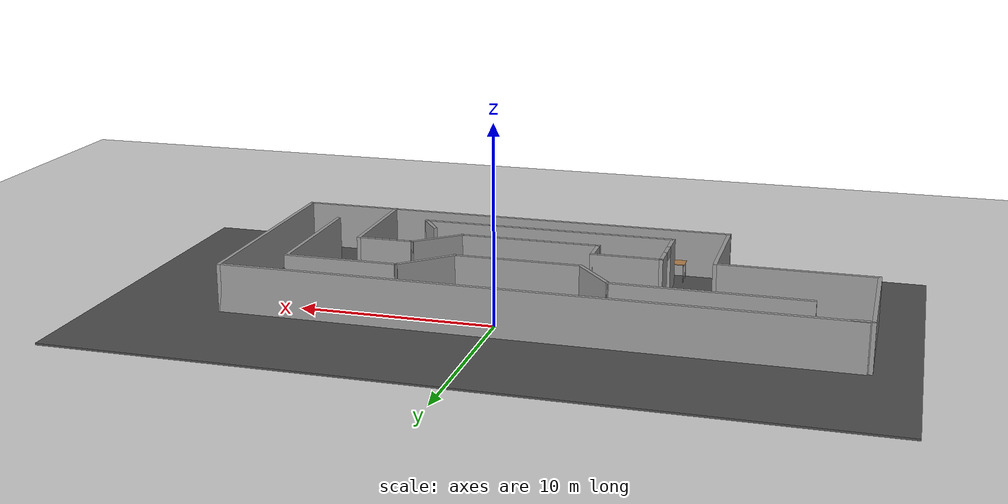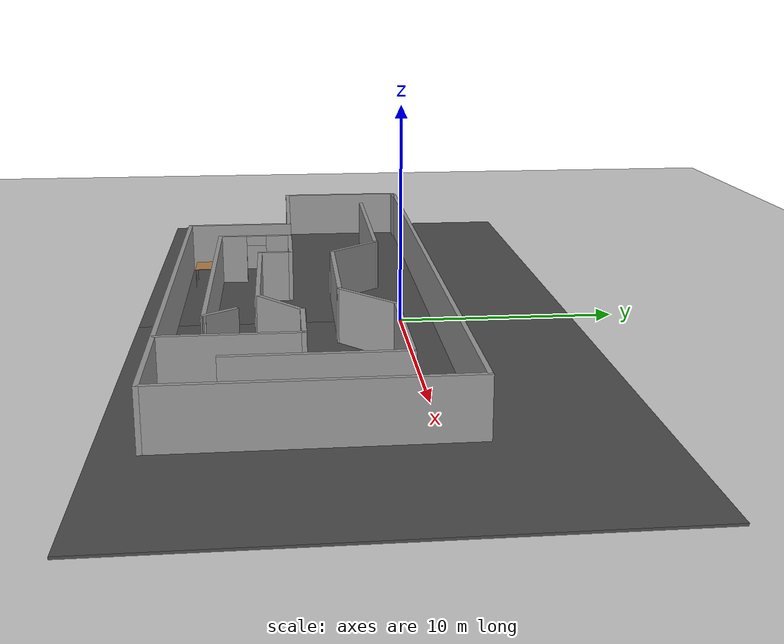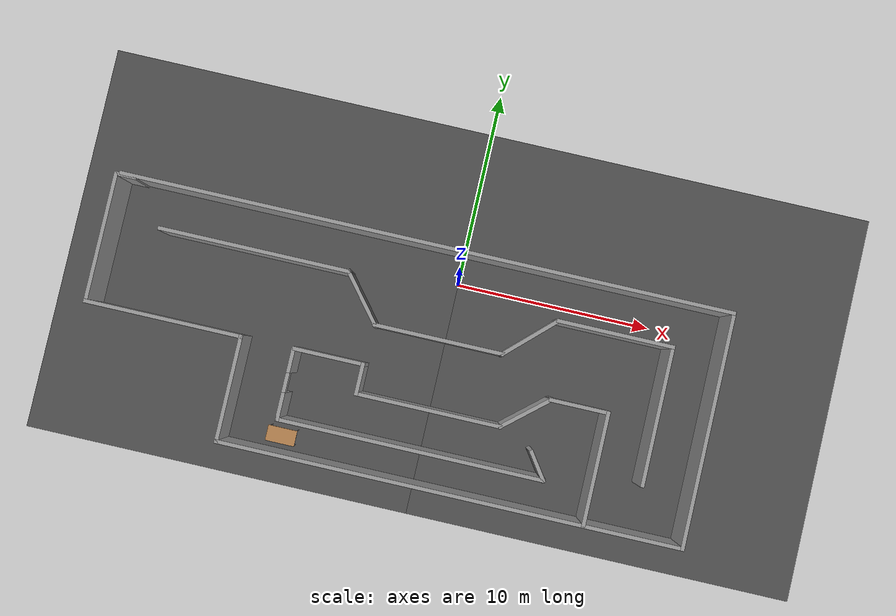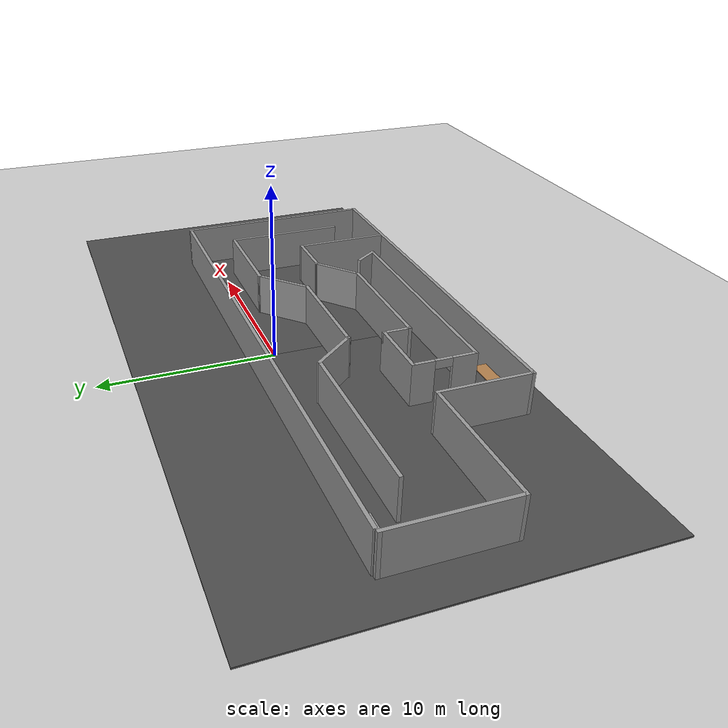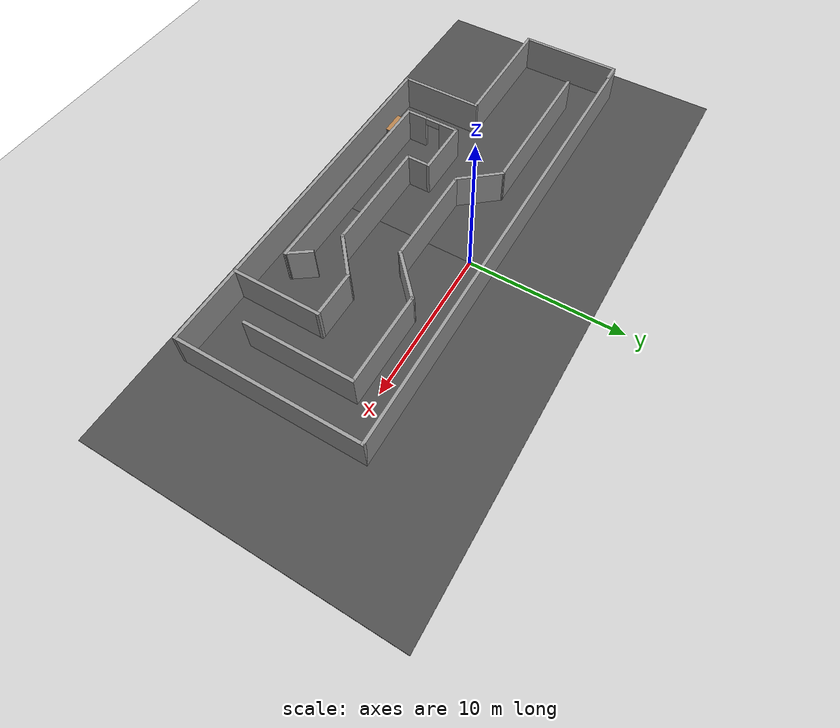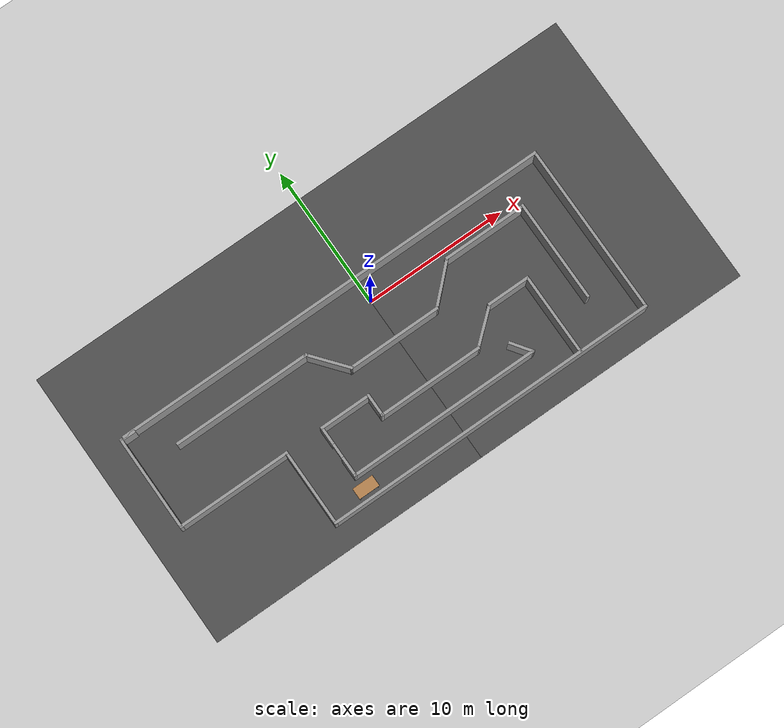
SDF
<sdf version="1.4">
 <world name="default">
  <light name="sun" type="directional">
   <pose>0 0 10 0 -0 0</pose>
   <diffuse>0.8 0.8 0.8 1</diffuse>
   <specular>0.2 0.2 0.2 1</specular>
   <attenuation>
    <range>1000</range>
    <constant>0.9</constant>
    <linear>0.01</linear>
    <quadratic>0.001</quadratic>
   </attenuation>
   <direction>-0.5 0.1 -0.9</direction>
  </light>
  <model name="ground_plane">
   <static>1</static>
   <link name="link">
    <collision name="collision">
     <geometry><plane><normal>0 0 1</normal><size>100 100</size></plane></geometry>
     <surface><friction><ode><mu>100</mu><mu2>50</mu2></ode></friction></surface>
    </collision>
    <visual name="visual">
     <cast_shadows>0</cast_shadows>
     <geometry><plane><normal>0 0 1</normal><size>100 100</size></plane></geometry>
     <material>
      <script><uri>file://media/materials/scripts/gazebo.material</uri><name>Gazebo/Grey</name></script>
     </material>
    </visual>
    <velocity_decay><linear>0</linear><angular>0</angular></velocity_decay>
   </link>
  </model>
  <physics type="ode">
   <max_step_size>0.001</max_step_size>
   <real_time_factor>1</real_time_factor>
   <real_time_update_rate>1000</real_time_update_rate>
   <gravity>0 0 -9.8</gravity>
  </physics>
  <scene><ambient>0.4 0.4 0.4 1</ambient><background>0.7 0.7 0.7 1</background><shadows>1</shadows></scene>
  <model name="corridor_small">
   <link name="Wall_10">
    <collision name="Wall_10_Collision">
     <geometry><box><size>1.12387 0.2 2.5</size></box></geometry>
     <pose>0 0 1.25 0 -0 0</pose>
    </collision>
    <visual name="Wall_10_Visual">
     <pose>0 0 1.25 0 -0 0</pose>
     <geometry><box><size>1.12387 0.2 2.5</size></box></geometry>
     <material>
      <script><uri>file://media/materials/scripts/gazebo.material</uri><name>Gazebo/Grey</name></script>
     </material>
    </visual>
    <velocity_decay><linear>0</linear><angular>0</angular></velocity_decay>
    <pose>-23.7065 13.1084 0 0 -0 0</pose>
   </link>
   <link name="Wall_12">
    <collision name="Wall_12_Collision">
     <geometry><box><size>9.79835 0.2 2.5</size></box></geometry>
     <pose>0 0 1.25 0 -0 0</pose>
    </collision>
    <visual name="Wall_12_Visual">
     <pose>0 0 1.25 0 -0 0</pose>
     <geometry><box><size>9.79835 0.2 2.5</size></box></geometry>
     <material>
      <script><uri>file://media/materials/scripts/gazebo.material</uri><name>Gazebo/Grey</name></script>
     </material>
    </visual>
    <velocity_decay><linear>0</linear><angular>0</angular></velocity_decay>
    <pose>-16.6254 10.9446 0 0 -0 0</pose>
   </link>
   <link name="Wall_13">
    <collision name="Wall_13_Collision">
     <geometry><box><size>3.13082 0.2 2.5</size></box></geometry>
     <pose>0 0 1.25 0 -0 0</pose>
    </collision>
    <visual name="Wall_13_Visual">
     <pose>0 0 1.25 0 -0 0</pose>
     <geometry><box><size>3.13082 0.2 2.5</size></box></geometry>
     <material>
      <script><uri>file://media/materials/scripts/gazebo.material</uri><name>Gazebo/Grey</name></script>
     </material>
    </visual>
    <velocity_decay><linear>0</linear><angular>0</angular></velocity_decay>
    <pose>-10.9033 9.80634 0 0 0 -0.889498</pose>
   </link>
   <link name="Wall_14">
    <collision name="Wall_14_Collision">
     <geometry><box><size>6.66043 0.2 2.5</size></box></geometry>
     <pose>0 0 1.25 0 -0 0</pose>
    </collision>
    <visual name="Wall_14_Visual">
     <pose>0 0 1.25 0 -0 0</pose>
     <geometry><box><size>6.66043 0.2 2.5</size></box></geometry>
     <material>
      <script><uri>file://media/materials/scripts/gazebo.material</uri><name>Gazebo/Grey</name></script>
     </material>
    </visual>
    <velocity_decay><linear>0</linear><angular>0</angular></velocity_decay>
    <pose>-6.75013 8.66808 0 0 -0 0</pose>
   </link>
   <link name="Wall_15">
    <collision name="Wall_15_Collision">
     <geometry><box><size>3.42068 0.2 2.5</size></box></geometry>
     <pose>0 0 1.25 0 -0 0</pose>
    </collision>
    <visual name="Wall_15_Visual">
     <pose>0 0 1.25 0 -0 0</pose>
     <geometry><box><size>3.42068 0.2 2.5</size></box></geometry>
     <material>
      <script><uri>file://media/materials/scripts/gazebo.material</uri><name>Gazebo/Grey</name></script>
     </material>
    </visual>
    <velocity_decay><linear>0</linear><angular>0</angular></velocity_decay>
    <pose>-2.35089 9.77558 0 0 -0 0.758378</pose>
   </link>
   <link name="Wall_16">
    <collision name="Wall_16_Collision">
     <geometry><box><size>5.98362 0.2 2.5</size></box></geometry>
     <pose>0 0 1.25 0 -0 0</pose>
    </collision>
    <visual name="Wall_16_Visual">
     <pose>0 0 1.25 0 -0 0</pose>
     <geometry><box><size>5.98362 0.2 2.5</size></box></geometry>
     <material>
      <script><uri>file://media/materials/scripts/gazebo.material</uri><name>Gazebo/Grey</name></script>
     </material>
    </visual>
    <velocity_decay><linear>0</linear><angular>0</angular></velocity_decay>
    <pose>1.70995 10.8831 0 0 -0 0</pose>
   </link>
   <link name="Wall_17">
    <collision name="Wall_17_Collision">
     <geometry><box><size>7.15265 0.2 2.5</size></box></geometry>
     <pose>0 0 1.25 0 -0 0</pose>
    </collision>
    <visual name="Wall_17_Visual">
     <pose>0 0 1.25 0 -0 0</pose>
     <geometry><box><size>7.15265 0.2 2.5</size></box></geometry>
     <material>
      <script><uri>file://media/materials/scripts/gazebo.material</uri><name>Gazebo/Grey</name></script>
     </material>
    </visual>
    <velocity_decay><linear>0</linear><angular>0</angular></velocity_decay>
    <pose>4.60176 7.40675 0 0 0 -1.5708</pose>
   </link>
   <link name="Wall_19">
    <collision name="Wall_19_Collision">
     <geometry><box><size>5.79904 0.2 2.5</size></box></geometry>
     <pose>0 0 1.25 0 -0 0</pose>
    </collision>
    <visual name="Wall_19_Visual">
     <pose>0 0 1.25 0 -0 0</pose>
     <geometry><box><size>5.79904 0.2 2.5</size></box></geometry>
     <material>
      <script><uri>file://media/materials/scripts/gazebo.material</uri><name>Gazebo/Grey</name></script>
     </material>
    </visual>
    <velocity_decay><linear>0</linear><angular>0</angular></velocity_decay>
    <pose>2.20217 4.2073 0 0 -0 1.5708</pose>
   </link>
   <link name="Wall_20">
    <collision name="Wall_20_Collision">
     <geometry><box><size>3.09181 0.2 2.5</size></box></geometry>
     <pose>0 0 1.25 0 -0 0</pose>
    </collision>
    <visual name="Wall_20_Visual">
     <pose>0 0 1.25 0 -0 0</pose>
     <geometry><box><size>3.09181 0.2 2.5</size></box></geometry>
     <material>
      <script><uri>file://media/materials/scripts/gazebo.material</uri><name>Gazebo/Grey</name></script>
     </material>
    </visual>
    <velocity_decay><linear>0</linear><angular>0</angular></velocity_decay>
    <pose>0.756269 7.00682 0 0 -0 3.14159</pose>
   </link>
   <link name="Wall_21">
    <collision name="Wall_21_Collision">
     <geometry><box><size>3.03629 0.2 2.5</size></box></geometry>
     <pose>0 0 1.25 0 -0 0</pose>
    </collision>
    <visual name="Wall_21_Visual">
     <pose>0 0 1.25 0 -0 0</pose>
     <geometry><box><size>3.03629 0.2 2.5</size></box></geometry>
     <material>
      <script><uri>file://media/materials/scripts/gazebo.material</uri><name>Gazebo/Grey</name></script>
     </material>
    </visual>
    <velocity_decay><linear>0</linear><angular>0</angular></velocity_decay>
    <pose>-1.76637 6.0839 0 0 0 -2.43297</pose>
   </link>
   <link name="Wall_22">
    <collision name="Wall_22_Collision">
     <geometry><box><size>7.46029 0.2 2.5</size></box></geometry>
     <pose>0 0 1.25 0 -0 0</pose>
    </collision>
    <visual name="Wall_22_Visual">
     <pose>0 0 1.25 0 -0 0</pose>
     <geometry><box><size>7.46029 0.2 2.5</size></box></geometry>
     <material>
      <script><uri>file://media/materials/scripts/gazebo.material</uri><name>Gazebo/Grey</name></script>
     </material>
    </visual>
    <velocity_decay><linear>0</linear><angular>0</angular></velocity_decay>
    <pose>-6.47326 5.16099 0 0 -0 3.14159</pose>
   </link>
   <link name="Wall_23">
    <collision name="Wall_23_Collision">
     <geometry><box><size>1.67667 0.2 2.5</size></box></geometry>
     <pose>0 0 1.25 0 -0 0</pose>
    </collision>
    <visual name="Wall_23_Visual">
     <pose>0 0 1.25 0 -0 0</pose>
     <geometry><box><size>1.67667 0.2 2.5</size></box></geometry>
     <material>
      <script><uri>file://media/materials/scripts/gazebo.material</uri><name>Gazebo/Grey</name></script>
     </material>
    </visual>
    <velocity_decay><linear>0</linear><angular>0</angular></velocity_decay>
    <pose>-10.1034 5.89932 0 0 -0 1.5708</pose>
   </link>
   <link name="Wall_24">
    <collision name="Wall_24_Collision">
     <geometry><box><size>3.70709 0.2 2.5</size></box></geometry>
     <pose>0 0 1.25 0 -0 0</pose>
    </collision>
    <visual name="Wall_24_Visual">
     <pose>0 0 1.25 0 -0 0</pose>
     <geometry><box><size>3.70709 0.2 2.5</size></box></geometry>
     <material>
      <script><uri>file://media/materials/scripts/gazebo.material</uri><name>Gazebo/Grey</name></script>
     </material>
    </visual>
    <velocity_decay><linear>0</linear><angular>0</angular></velocity_decay>
    <pose>-11.8569 6.63766 0 0 -0 3.14159</pose>
   </link>
   <link name="Wall_25">
    <pose>-13.6105 4.85335 0 0 0 -1.5708</pose>
    <visual name="Wall_25_Visual_0">
     <pose>-1.22292 0 1.25 0 -0 0</pose>
     <geometry><box><size>1.32278 0.2 2.5</size></box></geometry>
     <material>
      <script><uri>file://media/materials/scripts/gazebo.material</uri><name>Gazebo/Grey</name></script>
     </material>
    </visual>
    <collision name="Wall_25_Collision_0">
     <geometry><box><size>1.32278 0.2 2.5</size></box></geometry>
     <pose>-1.22292 0 1.25 0 -0 0</pose>
    </collision>
    <visual name="Wall_25_Visual_1">
     <pose>1.16139 0 1.25 0 -0 0</pose>
     <geometry><box><size>1.44584 0.2 2.5</size></box></geometry>
     <material>
      <script><uri>file://media/materials/scripts/gazebo.material</uri><name>Gazebo/Grey</name></script>
     </material>
    </visual>
    <collision name="Wall_25_Collision_1">
     <geometry><box><size>1.44584 0.2 2.5</size></box></geometry>
     <pose>1.16139 0 1.25 0 -0 0</pose>
    </collision>
    <visual name="Wall_25_Visual_2">
     <pose>-0.061528 0 2.25 0 -0 0</pose>
     <geometry><box><size>1 0.2 0.5</size></box></geometry>
     <material>
      <script><uri>file://media/materials/scripts/gazebo.material</uri><name>Gazebo/Grey</name></script>
     </material>
    </visual>
    <collision name="Wall_25_Collision_2">
     <geometry><box><size>1 0.2 0.5</size></box></geometry>
     <pose>-0.061528 0 2.25 0 -0 0</pose>
    </collision>
    <velocity_decay><linear>0</linear><angular>0</angular></velocity_decay>
   </link>
   <link name="Wall_26">
    <collision name="Wall_26_Collision">
     <geometry><box><size>13.6131 0.2 2.5</size></box></geometry>
     <pose>0 0 1.25 0 -0 0</pose>
    </collision>
    <visual name="Wall_26_Visual">
     <pose>0 0 1.25 0 -0 0</pose>
     <geometry><box><size>13.6131 0.2 2.5</size></box></geometry>
     <material>
      <script><uri>file://media/materials/scripts/gazebo.material</uri><name>Gazebo/Grey</name></script>
     </material>
    </visual>
    <velocity_decay><linear>0</linear><angular>0</angular></velocity_decay>
    <pose>-6.90395 3.06904 0 0 -0 0</pose>
   </link>
   <link name="Wall_27">
    <collision name="Wall_27_Collision">
     <geometry><box><size>1.70209 0.2 2.5</size></box></geometry>
     <pose>0 0 1.25 0 -0 0</pose>
    </collision>
    <visual name="Wall_27_Visual">
     <pose>0 0 1.25 0 -0 0</pose>
     <geometry><box><size>1.70209 0.2 2.5</size></box></geometry>
     <material>
      <script><uri>file://media/materials/scripts/gazebo.material</uri><name>Gazebo/Grey</name></script>
     </material>
    </visual>
    <velocity_decay><linear>0</linear><angular>0</angular></velocity_decay>
    <pose>-0.628108 3.68432 0 0 -0 2.18152</pose>
   </link>
   <link name="Wall_4">
    <collision name="Wall_4_Collision">
     <geometry><box><size>31.3001 0.2 2.5</size></box></geometry>
     <pose>0 0 1.25 0 -0 0</pose>
    </collision>
    <visual name="Wall_4_Visual">
     <pose>0 0 1.25 0 -0 0</pose>
     <geometry><box><size>31.3001 0.2 2.5</size></box></geometry>
     <material>
      <script><uri>file://media/materials/scripts/gazebo.material</uri><name>Gazebo/Grey</name></script>
     </material>
    </visual>
    <velocity_decay><linear>0</linear><angular>0</angular></velocity_decay>
    <pose>-8.3686 13.1866 0 0 -0 0</pose>
   </link>
   <link name="Wall_5">
    <collision name="Wall_5_Collision">
     <geometry><box><size>12.0374 0.2 2.5</size></box></geometry>
     <pose>0 0 1.25 0 -0 0</pose>
    </collision>
    <visual name="Wall_5_Visual">
     <pose>0 0 1.25 0 -0 0</pose>
     <geometry><box><size>12.0374 0.2 2.5</size></box></geometry>
     <material>
      <script><uri>file://media/materials/scripts/gazebo.material</uri><name>Gazebo/Grey</name></script>
     </material>
    </visual>
    <velocity_decay><linear>0</linear><angular>0</angular></velocity_decay>
    <pose>7.18143 7.2679 0 0 0 -1.5708</pose>
   </link>
   <link name="Wall_6">
    <collision name="Wall_6_Collision">
     <geometry><box><size>23.6596 0.2 2.5</size></box></geometry>
     <pose>0 0 1.25 0 -0 0</pose>
    </collision>
    <visual name="Wall_6_Visual">
     <pose>0 0 1.25 0 -0 0</pose>
     <geometry><box><size>23.6596 0.2 2.5</size></box></geometry>
     <material>
      <script><uri>file://media/materials/scripts/gazebo.material</uri><name>Gazebo/Grey</name></script>
     </material>
    </visual>
    <velocity_decay><linear>0</linear><angular>0</angular></velocity_decay>
    <pose>-4.54835 1.3492 0 0 -0 3.14159</pose>
   </link>
   <link name="Wall_7">
    <collision name="Wall_7_Collision">
     <geometry><box><size>5.47302 0.2 2.5</size></box></geometry>
     <pose>0 0 1.25 0 -0 0</pose>
    </collision>
    <visual name="Wall_7_Visual">
     <pose>0 0 1.25 0 -0 0</pose>
     <geometry><box><size>5.47302 0.2 2.5</size></box></geometry>
     <material>
      <script><uri>file://media/materials/scripts/gazebo.material</uri><name>Gazebo/Grey</name></script>
     </material>
    </visual>
    <velocity_decay><linear>0</linear><angular>0</angular></velocity_decay>
    <pose>-16.2781 3.98571 0 0 -0 1.5708</pose>
   </link>
   <link name="Wall_8">
    <collision name="Wall_8_Collision">
     <geometry><box><size>8.09029 0.2 2.5</size></box></geometry>
     <pose>0 0 1.25 0 -0 0</pose>
    </collision>
    <visual name="Wall_8_Visual">
     <pose>0 0 1.25 0 -0 0</pose>
     <geometry><box><size>8.09029 0.2 2.5</size></box></geometry>
     <material>
      <script><uri>file://media/materials/scripts/gazebo.material</uri><name>Gazebo/Grey</name></script>
     </material>
    </visual>
    <velocity_decay><linear>0</linear><angular>0</angular></velocity_decay>
    <pose>-20.2233 6.62222 0 0 -0 3.14159</pose>
   </link>
   <link name="Wall_9">
    <collision name="Wall_9_Collision">
     <geometry><box><size>6.6862 0.2 2.5</size></box></geometry>
     <pose>0 0 1.25 0 -0 0</pose>
    </collision>
    <visual name="Wall_9_Visual">
     <pose>0 0 1.25 0 -0 0</pose>
     <geometry><box><size>6.6862 0.2 2.5</size></box></geometry>
     <material>
      <script><uri>file://media/materials/scripts/gazebo.material</uri><name>Gazebo/Grey</name></script>
     </material>
    </visual>
    <velocity_decay><linear>0</linear><angular>0</angular></velocity_decay>
    <pose>-24.1684 9.86532 0 0 -0 1.5708</pose>
   </link>
   <static>1</static>
   <pose>6.4264 -11.6495 0 0 -0 0</pose>
  </model>
  <model name="asphalt_plane">
   <static>1</static>
   <link name="link">
    <collision name="collision"><geometry><box><size>20 20 0.1</size></box></geometry></collision>
    <visual name="visual">
     <cast_shadows>0</cast_shadows>
     <geometry><box><size>20 20 0.1</size></box></geometry>
     <material>
      <script>
       <uri>model://asphalt_plane/materials/scripts</uri>
       <uri>model://asphalt_plane/materials/textures</uri>
       <name>vrc/asphalt</name>
      </script>
     </material>
    </visual>
    <velocity_decay><linear>0</linear><angular>0</angular></velocity_decay>
   </link>
   <pose>-10 -2 0 0 -0 0</pose>
  </model>
  <model name="asphalt_plane_0">
   <static>1</static>
   <link name="link">
    <collision name="collision"><geometry><box><size>20 20 0.1</size></box></geometry></collision>
    <visual name="visual">
     <cast_shadows>0</cast_shadows>
     <geometry><box><size>20 20 0.1</size></box></geometry>
     <material>
      <script>
       <uri>model://asphalt_plane/materials/scripts</uri>
       <uri>model://asphalt_plane/materials/textures</uri>
       <name>vrc/asphalt</name>
      </script>
     </material>
    </visual>
    <velocity_decay><linear>0</linear><angular>0</angular></velocity_decay>
   </link>
   <pose>10 -2 0 0 -0 0</pose>
  </model>
  <model name="table">
   <static>1</static>
   <link name="link">
    <collision name="surface">
     <pose>0 0 1 0 -0 0</pose>
     <geometry><box><size>1.5 0.8 0.03</size></box></geometry>
     <surface><friction><ode><mu>0.6</mu><mu2>0.6</mu2></ode></friction></surface>
    </collision>
    <visual name="visual1">
     <pose>0 0 1 0 -0 0</pose>
     <geometry><box><size>1.5 0.8 0.03</size></box></geometry>
     <material>
      <script><uri>file://media/materials/scripts/gazebo.material</uri><name>Gazebo/Wood</name></script>
     </material>
    </visual>
    <collision name="front_left_leg">
     <pose>0.68 0.38 0.5 0 -0 0</pose>
     <geometry><cylinder><radius>0.02</radius><length>1</length></cylinder></geometry>
    </collision>
    <visual name="front_left_leg">
     <pose>0.68 0.38 0.5 0 -0 0</pose>
     <geometry><cylinder><radius>0.02</radius><length>1</length></cylinder></geometry>
     <material>
      <script><uri>file://media/materials/scripts/gazebo.material</uri><name>Gazebo/Grey</name></script>
     </material>
    </visual>
    <collision name="front_right_leg">
     <pose>0.68 -0.38 0.5 0 -0 0</pose>
     <geometry><cylinder><radius>0.02</radius><length>1</length></cylinder></geometry>
    </collision>
    <visual name="front_right_leg">
     <pose>0.68 -0.38 0.5 0 -0 0</pose>
     <geometry><cylinder><radius>0.02</radius><length>1</length></cylinder></geometry>
     <material>
      <script><uri>file://media/materials/scripts/gazebo.material</uri><name>Gazebo/Grey</name></script>
     </material>
    </visual>
    <collision name="back_right_leg">
     <pose>-0.68 -0.38 0.5 0 -0 0</pose>
     <geometry><cylinder><radius>0.02</radius><length>1</length></cylinder></geometry>
    </collision>
    <visual name="back_right_leg">
     <pose>-0.68 -0.38 0.5 0 -0 0</pose>
     <geometry><cylinder><radius>0.02</radius><length>1</length></cylinder></geometry>
     <material>
      <script><uri>file://media/materials/scripts/gazebo.material</uri><name>Gazebo/Grey</name></script>
     </material>
    </visual>
    <collision name="back_left_leg">
     <pose>-0.68 0.38 0.5 0 -0 0</pose>
     <geometry><cylinder><radius>0.02</radius><length>1</length></cylinder></geometry>
    </collision>
    <visual name="back_left_leg">
     <pose>-0.68 0.38 0.5 0 -0 0</pose>
     <geometry><cylinder><radius>0.02</radius><length>1</length></cylinder></geometry>
     <material>
      <script><uri>file://media/materials/scripts/gazebo.material</uri><name>Gazebo/Grey</name></script>
     </material>
    </visual>
    <velocity_decay><linear>0</linear><angular>0</angular></velocity_decay>
   </link>
   <pose>-7 -9.46331 0 0 -0 0</pose>
  </model>
 </world>
</sdf>
